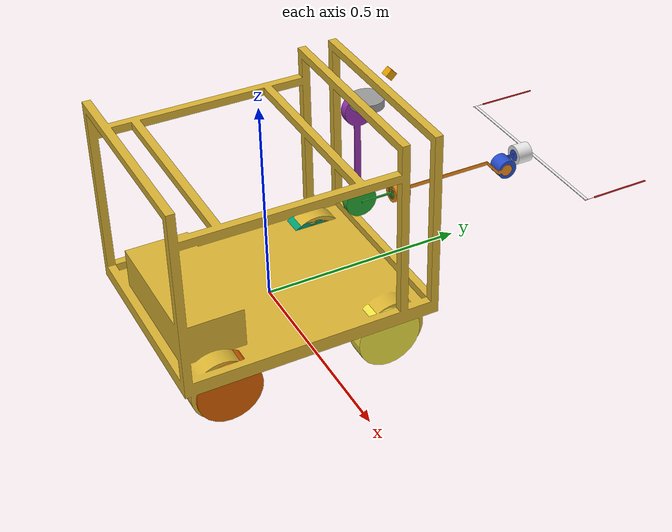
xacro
<?xml version="1.0"?>
<robot name="robotic_arm"
  xmlns:xacro="http://www.ros.org/wiki/xacro">

  <!-- Constants for robot dimensions -->
  <xacro:property name="PI" value="3.1415926535897931"/>

  <!-- Import all Gazebo-customization elements, including Gazebo colors -->
  <xacro:include filename="$(find robotic_arm)/urdf/robotic_arm.gazebo" />

  <xacro:include filename="$(find robotic_arm)/urdf/parts/camera.urdf" />

  <xacro:include filename="$(find robotic_arm)/urdf/parts/base.urdf" />
  <xacro:include filename="$(find robotic_arm)/urdf/parts/wheels.urdf" />
  <xacro:include filename="$(find robotic_arm)/urdf/parts/shoulder.urdf" />
  <xacro:include filename="$(find robotic_arm)/urdf/parts/upperarm.urdf" />
  <xacro:include filename="$(find robotic_arm)/urdf/parts/elbow.urdf" />
  <xacro:include filename="$(find robotic_arm)/urdf/parts/forearm.urdf" />
  <xacro:include filename="$(find robotic_arm)/urdf/parts/wrist.urdf" />
  <xacro:include filename="$(find robotic_arm)/urdf/parts/hand.urdf" />
  <xacro:include filename="$(find robotic_arm)/urdf/parts/hand_L.urdf" />
  <xacro:include filename="$(find robotic_arm)/urdf/parts/hand_R.urdf" />

  <link name="dummy"/>
  <joint name="dummy_joint" type="fixed">
    <parent link="dummy"/>
    <child link="base"/>
    <origin xyz="0 0.0 0.0" rpy="0 0 0"/>
  </joint>

  <xacro:macro name="joint_property">
    <axis xyz="0 0 1"/>
    <dynamics damping="0.07" friction="0.01"/>
    <limit effort="100.0" velocity="3.0"/>
  </xacro:macro>

<!-- Joint settings -->
  <joint name="wheel_LF_joint" type="continuous">
    <parent link="base"/>
    <child link="wheel_LF"/>
    <origin xyz="-0.2 0.2 -0.05" rpy="0 ${PI/2} 0"/>
    <axis xyz="1 1 0"/>
  </joint>
  <joint name="wheel_RF_joint" type="continuous">
    <parent link="base"/>
    <child link="wheel_RF"/>
    <origin xyz="0.2 0.2 -0.05" rpy="0 ${PI/2} 0"/>
    <axis xyz="1 1 0"/>
  </joint>
  <joint name="wheel_LB_joint" type="continuous">
    <parent link="base"/>
    <child link="wheel_LB"/>
    <origin xyz="-0.2 -0.2 -0.05" rpy="0 ${PI/2} 0"/>
    <axis xyz="1 1 0"/>
  </joint>
  <joint name="wheel_RB_joint" type="continuous">
    <parent link="base"/>
    <child link="wheel_RB"/>
    <origin xyz="0.2 -0.2 -0.05" rpy="0 ${PI/2} 0"/>
    <axis xyz="1 1 0"/>
  </joint>

  <joint name="camera_joint" type="fixed">
    <parent link="base"/>
    <child link="camera_link"/>
    <origin xyz="0 0.32 0.5" rpy="0 ${PI/4} ${PI/2}"/>
  </joint>

  <joint name="0_shoulder_LR" type="continuous">
    <parent link="base"/>
    <child link="shoulder"/>
    <origin xyz="0 0.263 0.455" rpy="0 0 ${PI/2}"/>
    <xacro:joint_property/>
  </joint>

  <joint name="1_shoulder_FB" type="continuous">
    <parent link="shoulder"/>
    <child link="upperarm"/>
    <origin xyz="0.0 0.05 -0.05" rpy="0 ${PI/2} ${PI/2}"/>
    <xacro:joint_property/>
  </joint>

  <joint name="2_elbow_FB" type="continuous">
    <parent link="upperarm"/>
    <child link="elbow"/>
    <origin xyz="0.25 0 0.0" rpy="0 0 ${-PI/2}"/>
    <xacro:joint_property/>
  </joint>

  <joint name="3_elbow_R" type="continuous">
    <parent link="elbow"/>
    <child link="forearm"/>
    <origin xyz="0.08 0 -0.02" rpy="${PI/2} 0 ${-PI/2}"/>
    <xacro:joint_property/>
  </joint>

  <joint name="4_wrist_P" type="continuous">
    <parent link="forearm"/>
    <child link="wrist"/>
    <origin xyz="0.00 -0.05 -0.30" rpy="${PI/2} ${-PI/2} 0"/>
    <xacro:joint_property/>
  </joint>

  <joint name="5_wrist_Y" type="continuous">
    <parent link="wrist"/>
    <child link="hand"/>
    <origin xyz="-0.05 0 -0.05" rpy="${-PI/2} 0 ${-PI/2}"/>
    <xacro:joint_property/>
  </joint>

  <joint name="6_hand_left" type="prismatic">
    <parent link="hand"/>
    <child link="hand_L"/>
    <origin xyz="0.0 0.25 -0.040" rpy="0 0 0"/>
    <axis xyz="0 1 0"/>
    <limit effort="100" velocity="1.0" lower="-0.2" upper="0.0" />
  </joint>

  <joint name="7_hand_right" type="prismatic">
    <parent link="hand"/>
    <child link="hand_R"/>
    <origin xyz="0.0 -0.25 -0.040" rpy="0 0 0"/>
    <axis xyz="0 1 0"/>
    <limit effort="100" velocity="1.0" lower="0.0" upper="0.2" />
  </joint>

  <transmission name="tran_wheel_LF">
    <type>transmission_interface/SimpleTransmission</type>
    <joint name="wheel_LF_joint">
      <hardwareInterface>hardware_interface/VelocityJointInterface</hardwareInterface>
    </joint>
    <actuator name="wheel1">
      <hardwareInterface>hardware_interface/VelocityJointInterface</hardwareInterface>
      <mechanicalReduction>1</mechanicalReduction>
    </actuator>
  </transmission>
  <transmission name="tran_wheel_RF">
    <type>transmission_interface/SimpleTransmission</type>
    <joint name="wheel_RF_joint">
      <hardwareInterface>hardware_interface/VelocityJointInterface</hardwareInterface>
    </joint>
    <actuator name="wheel2">
      <hardwareInterface>hardware_interface/VelocityJointInterface</hardwareInterface>
      <mechanicalReduction>1</mechanicalReduction>
    </actuator>
  </transmission>
  <transmission name="tran_wheel_LB">
    <type>transmission_interface/SimpleTransmission</type>
    <joint name="wheel_LB_joint">
      <hardwareInterface>hardware_interface/VelocityJointInterface</hardwareInterface>
    </joint>
    <actuator name="wheel3">
      <hardwareInterface>hardware_interface/VelocityJointInterface</hardwareInterface>
      <mechanicalReduction>1</mechanicalReduction>
    </actuator>
  </transmission>
  <transmission name="tran_wheel_RB">
    <type>transmission_interface/SimpleTransmission</type>
    <joint name="wheel_RB_joint">
      <hardwareInterface>hardware_interface/VelocityJointInterface</hardwareInterface>
    </joint>
    <actuator name="wheel4">
      <hardwareInterface>hardware_interface/VelocityJointInterface</hardwareInterface>
      <mechanicalReduction>1</mechanicalReduction>
    </actuator>
  </transmission>

  <transmission name="tran_S_LR">
    <type>transmission_interface/SimpleTransmission</type>
    <joint name="0_shoulder_LR">
      <hardwareInterface>hardware_interface/EffortJointInterface</hardwareInterface>
    </joint>
    <actuator name="motor1">
      <hardwareInterface>hardware_interface/EffortJointInterface</hardwareInterface>
      <mechanicalReduction>1</mechanicalReduction>
    </actuator>
  </transmission>

  <transmission name="tran_S_FB">
    <type>transmission_interface/SimpleTransmission</type>
    <joint name="1_shoulder_FB">
      <hardwareInterface>hardware_interface/EffortJointInterface</hardwareInterface>
    </joint>
    <actuator name="motor2">
      <hardwareInterface>hardware_interface/EffortJointInterface</hardwareInterface>
      <mechanicalReduction>1</mechanicalReduction>
    </actuator>
  </transmission>

  <transmission name="tran_E_FB">
    <type>transmission_interface/SimpleTransmission</type>
    <joint name="2_elbow_FB">
      <hardwareInterface>hardware_interface/EffortJointInterface</hardwareInterface>
    </joint>
    <actuator name="motor3">
      <hardwareInterface>hardware_interface/EffortJointInterface</hardwareInterface>
      <mechanicalReduction>1</mechanicalReduction>
    </actuator>
  </transmission>

  <transmission name="tran_E_R">
    <type>transmission_interface/SimpleTransmission</type>
    <joint name="3_elbow_R">
      <hardwareInterface>hardware_interface/EffortJointInterface</hardwareInterface>
    </joint>
    <actuator name="motor4">
      <hardwareInterface>hardware_interface/EffortJointInterface</hardwareInterface>
      <mechanicalReduction>1</mechanicalReduction>
    </actuator>
  </transmission>

  <transmission name="tran_W_P">
    <type>transmission_interface/SimpleTransmission</type>
    <joint name="4_wrist_P">
      <hardwareInterface>hardware_interface/EffortJointInterface</hardwareInterface>
    </joint>
    <actuator name="motor5">
      <hardwareInterface>hardware_interface/EffortJointInterface</hardwareInterface>
      <mechanicalReduction>1</mechanicalReduction>
    </actuator>
  </transmission>

  <transmission name="tran_W_Y">
    <type>transmission_interface/SimpleTransmission</type>
    <joint name="5_wrist_Y">
      <hardwareInterface>hardware_interface/EffortJointInterface</hardwareInterface>
    </joint>
    <actuator name="motor6">
      <hardwareInterface>hardware_interface/EffortJointInterface</hardwareInterface>
      <mechanicalReduction>1</mechanicalReduction>
    </actuator>
  </transmission>

  <transmission name="tran_H_L">
    <type>transmission_interface/SimpleTransmission</type>
    <joint name="6_hand_left">
      <hardwareInterface>hardware_interface/EffortJointInterface</hardwareInterface>
    </joint>
    <actuator name="motor7">
      <hardwareInterface>hardware_interface/EffortJointInterface</hardwareInterface>
      <mechanicalReduction>1</mechanicalReduction>
    </actuator>
  </transmission>

  <transmission name="tran_H_R">
    <type>transmission_interface/SimpleTransmission</type>
    <joint name="7_hand_right">
      <hardwareInterface>hardware_interface/EffortJointInterface</hardwareInterface>
    </joint>
    <actuator name="motor8">
      <hardwareInterface>hardware_interface/EffortJointInterface</hardwareInterface>
      <mechanicalReduction>1</mechanicalReduction>
    </actuator>
  </transmission>

</robot>

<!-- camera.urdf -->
<robot name="robotic_arm" xmlns:xacro="http://www.ros.org/wiki/xacro">
  <xacro:property name="camera_link" value="0.02"/>
  <!-- Camera -->
  <link name="camera_link">
    <collision>
      <origin xyz="0 0 0" rpy="0 0 0"/>
      <geometry>
	<box size="${camera_link} ${camera_link} ${camera_link}"/>
      </geometry>
    </collision>

    <visual>
      <origin xyz="0 0 0" rpy="0 0 0"/>
      <geometry>
	<box size="${camera_link} ${camera_link} ${camera_link}"/>
      </geometry>
    </visual>

    <inertial>
      <mass value="1e-5" />
      <origin xyz="0 0 0" rpy="0 0 0"/>
      <inertia ixx="1e-6" ixy="0" ixz="0" iyy="1e-6" iyz="0" izz="1e-6" />
    </inertial>
  </link>
</robot>

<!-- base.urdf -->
<robot name="robotic_arm" xmlns:xacro="http://www.ros.org/wiki/xacro">
  <xacro:macro name="base_pos">
    <origin xyz="0 0 0" rpy="0 0 0" />
  </xacro:macro>
  <link name="base">
    <inertial>
      <origin xyz="0 -6.0302837e-02 6.6890578e-02" rpy="0 0 0" />
      <mass value="4.3718247e+01" />
      <inertia
      ixx="2.5888259e-00"
      ixy="0.0000000e-00"
      ixz="0.0000000e-00"
      iyy="1.8738491e-00"
      iyz="-6.2240048e-02"
      izz="2.8848656e-00" />
    </inertial>
    <visual>
      <xacro:base_pos/>
      <geometry>
        <mesh filename="package://robotic_arm/meshes/base.STL"
        scale="0.001 0.001 0.001"/>
      </geometry>
    </visual>
    <collision>
      <xacro:base_pos/>
      <geometry>
        <mesh filename="package://robotic_arm/meshes/base.STL"
        scale="0.001 0.001 0.001"/>
      </geometry>
      <surface>
        <mu>1.2</mu>
        <kp>5e7</kp>
        <kd>1.0</kd>
      </surface>
    </collision>
  </link>
</robot>

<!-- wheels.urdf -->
<robot name="robotic_arm"
  xmlns:xacro="http://www.ros.org/wiki/xacro">

  <xacro:macro name="wheel">
    <inertial>
      <mass value="0.5" />
      <inertia ixx="5e-8" ixy="0.0000000e-00" ixz="0.0000000e-00" iyy="5e-8" iyz="0.0" izz="5e-8" />
    </inertial>
    <visual>
      <geometry>
        <cylinder radius="0.08" length="0.05"/>
      </geometry>
    </visual>
    <collision>
      <geometry>
        <cylinder radius="0.08" length="0.05"/>
      </geometry>
      <surface>
        <mu>1</mu>
        <mu2>1</mu2>
        <kp>5e7</kp>
        <kd>1.0</kd>
      </surface>
    </collision>
  </xacro:macro>

  <link name="wheel_LF">
    <xacro:wheel/>
  </link>
  <link name="wheel_RF">
    <xacro:wheel/>
  </link>
  <link name="wheel_LB">
    <xacro:wheel/>
  </link>
  <link name="wheel_RB">
    <xacro:wheel/>
  </link>
</robot>

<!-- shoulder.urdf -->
<robot name="robotic_arm" xmlns:xacro="http://www.ros.org/wiki/xacro">
  <xacro:macro name="shoulder_pos">
    <origin xyz="0 0 0" rpy="0 0 0" />
  </xacro:macro>
  <link name="shoulder">
    <inertial>
      <origin xyz="0 1.1691159e-04 -1.0079262e-02" rpy="0 0 0" />
      <mass value="8.0038255e-1" />
      <inertia
      ixx="3.4957718e-04"
      ixy="0.0000000e-00"
      ixz="0.0000000e-00"
      iyy="3.4693313e-04"
      iyz="1.8640631e-06"
      izz="6.4063487e-04" />
    </inertial>
    <visual>
      <xacro:shoulder_pos/>
      <geometry>
        <mesh filename="package://robotic_arm/meshes/shoulder.STL"
         scale="0.001 0.001 0.001"/>
      </geometry>
    </visual>
    <collision>
      <xacro:shoulder_pos/>
      <geometry>
        <mesh filename="package://robotic_arm/meshes/shoulder.STL"
         scale="0.001 0.001 0.001"/>
      </geometry>
    </collision>
  </link>
</robot>

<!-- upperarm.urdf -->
<robot name="robotic_arm" xmlns:xacro="http://www.ros.org/wiki/xacro">
  <xacro:macro name="upperarm_pos">
    <origin xyz="0 0 0" rpy="0 0 0" />
  </xacro:macro>
  <link name="upperarm">
    <inertial>
      <origin xyz="1.6704046e-02 0 -9.0793135e-03" rpy="0 0 0" />
      <mass value="8.9873900e-01" />
      <inertia
      ixx="3.5372261e-04"
      ixy="0.0000000e-00"
      ixz="-1.0853064e-04"
      iyy="2.7163584e-03"
      iyz="0.0000000e-00"
      izz="3.0047380e-03" />
    </inertial>
    <visual>
      <xacro:upperarm_pos/>
      <geometry>
        <mesh filename="package://robotic_arm/meshes/upperarm.STL"
        scale="0.001 0.001 0.001"/>
      </geometry>
    </visual>
    <collision>
      <xacro:upperarm_pos/>
      <geometry>
        <mesh filename="package://robotic_arm/meshes/upperarm.STL"
        scale="0.001 0.001 0.001"/>
      </geometry>
    </collision>
  </link>
</robot>

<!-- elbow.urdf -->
<robot name="robotic_arm" xmlns:xacro="http://www.ros.org/wiki/xacro">
  <xacro:macro name="elbow_pos">
    <origin xyz="0 0 0" rpy="0 0 0" />
  </xacro:macro>
  <link name="elbow">
    <inertial>
      <origin xyz="1.2517875e-03 0 -1.0243071e-02" rpy="0 0 0" />
      <mass value="8.1499051e-01" />
      <inertia
      ixx="3.4882971e-04"
      ixy="0.0000000e-00"
      ixz="1.0766040e-05"
      iyy="4.1805134e-04"
      iyz="0.0000000e-00"
      izz="7.0818518e-04" />
    </inertial>
    <visual>
      <xacro:elbow_pos/>
      <geometry>
        <mesh filename="package://robotic_arm/meshes/elbow.STL"
         scale="0.001 0.001 0.001"/>
      </geometry>
    </visual>
    <collision>
      <xacro:elbow_pos/>
      <geometry>
        <mesh filename="package://robotic_arm/meshes/elbow.STL"
         scale="0.001 0.001 0.001"/>
      </geometry>
    </collision>
  </link>
</robot>

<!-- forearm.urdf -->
<robot name="robotic_arm" xmlns:xacro="http://www.ros.org/wiki/xacro">
  <xacro:macro name="forearm_pos">
    <origin xyz="0 0 0" rpy="0 0 0" />
  </xacro:macro>
  <link name="forearm">
    <inertial>
      <origin xyz="0 -5.6032359e-04 -3.0870677e-02" rpy="0 0 0" />
      <mass value="6.6799942e-01" />
      <inertia
      ixx="1.5740923e-03"
      ixy="0.0000000e-00"
      ixz="0.0000000e-00"
      iyy="1.5568906e-03"
      iyz="-9.7555506e-05"
      izz="2.1312321e-04" />
    </inertial>
    <visual>
      <xacro:forearm_pos/>
      <geometry>
        <mesh filename="package://robotic_arm/meshes/forearm.STL"
         scale="0.001 0.001 0.001"/>
      </geometry>
    </visual>
    <collision>
      <xacro:forearm_pos/>
      <geometry>
        <mesh filename="package://robotic_arm/meshes/forearm.STL"
         scale="0.001 0.001 0.001"/>
      </geometry>
    </collision>
  </link>
</robot>

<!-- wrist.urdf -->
<robot name="robotic_arm" xmlns:xacro="http://www.ros.org/wiki/xacro">
  <xacro:macro name="wrist_pos">
    <origin xyz="0 0 0" rpy="0 0 0" />
  </xacro:macro>
  <link name="wrist">
    <inertial>
      <origin xyz="7.4406717e-04 0 -2.0666887e-02" rpy="0 0 0" />
      <mass value="6.3770423e-01" />
      <inertia
      ixx="1.9297301e-04"
      ixy="0.0000000e-00"
      ixz="1.3443899e-05"
      iyy="2.1265381e-04"
      iyz="0.0000000e-00"
      izz="2.1509752e-04" />
    </inertial>
    <visual>
      <xacro:wrist_pos/>
      <geometry>
        <mesh filename="package://robotic_arm/meshes/wrist.STL"
         scale="0.001 0.001 0.001"/>
      </geometry>
    </visual>
    <collision>
      <xacro:wrist_pos/>
      <geometry>
        <mesh filename="package://robotic_arm/meshes/wrist.STL"
         scale="0.001 0.001 0.001"/>
      </geometry>
    </collision>
  </link>
</robot>

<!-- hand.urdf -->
<robot name="robotic_arm" xmlns:xacro="http://www.ros.org/wiki/xacro">
  <xacro:macro name="hand_pos">
    <origin xyz="0 0 0" rpy="0 0 0" />
  </xacro:macro>
  <link name="hand">
    <inertial>
      <origin xyz="0 0 -2.2218632e-02" rpy="0 0 0" />
      <mass value="6.8626074e-01" />
      <inertia
      ixx="1.5355271e-03"
      ixy="0.0000000e-00"
      ixz="0.0000000e-00"
      iyy="2.1388134e-04"
      iyz="0.0000000e-00"
      izz="1.5163193e-03" />
    </inertial>
    <visual>
      <xacro:hand_pos/>
      <geometry>
        <mesh filename="package://robotic_arm/meshes/hand.STL"
         scale="0.001 0.001 0.001"/>
      </geometry>
    </visual>
    <collision>
      <xacro:hand_pos/>
      <geometry>
        <mesh filename="package://robotic_arm/meshes/hand.STL"
         scale="0.001 0.001 0.001"/>
      </geometry>
    </collision>
  </link>
</robot>

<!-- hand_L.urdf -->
<robot name="robotic_arm" xmlns:xacro="http://www.ros.org/wiki/xacro">
  <xacro:macro name="hand_pos">
    <origin xyz="0 0 0" rpy="0 0 0" />
  </xacro:macro>
  <link name="hand_L">
    <inertial>
      <origin xyz="0 0 -3.3896049e-02" rpy="0 0 0" />
      <mass value="2.7705410e-02" />
      <inertia
      ixx="9.0156455e-06"
      ixy="0.0000000e-00"
      ixz="0.0000000e-00"
      iyy="7.7625902e-06"
      iyz="0.0000000e-00"
      izz="5.1001298e-06" />
    </inertial>
    <visual>
      <xacro:hand_pos/>
      <geometry>
        <mesh filename="package://robotic_arm/meshes/gripper.STL"
         scale="0.0001 0.0001 0.003"/>
      </geometry>
    </visual>
    <collision>
      <xacro:hand_pos/>
      <geometry>
        <mesh filename="package://robotic_arm/meshes/gripper.STL"
         scale="0.0001 0.0001 0.003"/>
      </geometry>
      <surface>
        <mu>1</mu>
        <kp>1e9</kp>
        <kd>1.0</kd>
      </surface>
    </collision>
  </link>
</robot>

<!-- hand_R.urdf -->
<robot name="robotic_arm" xmlns:xacro="http://www.ros.org/wiki/xacro">
  <xacro:macro name="hand_pos">
    <origin xyz="0 0 0" rpy="0 0 0" />
  </xacro:macro>
  <link name="hand_R">
    <inertial>
      <origin xyz="0 0 -3.3896049e-02" rpy="0 0 0" />
      <mass value="2.7705410e-02" />
      <inertia
      ixx="9.0156455e-06"
      ixy="0.0000000e-00"
      ixz="0.0000000e-00"
      iyy="7.7625902e-06"
      iyz="0.0000000e-00"
      izz="5.1001298e-06" />
    </inertial>
    <visual>
      <xacro:hand_pos/>
      <geometry>
        <mesh filename="package://robotic_arm/meshes/gripper.STL"
         scale="0.0001 0.0001 0.003"/>
      </geometry>
    </visual>
    <collision>
      <xacro:hand_pos/>
      <geometry>
        <mesh filename="package://robotic_arm/meshes/gripper.STL"
         scale="0.0001 0.0001 0.003"/>
      </geometry>
      <surface>
        <mu>1</mu>
        <kp>1e9</kp>
        <kd>1.0</kd>
      </surface>
    </collision>
  </link>
</robot>
